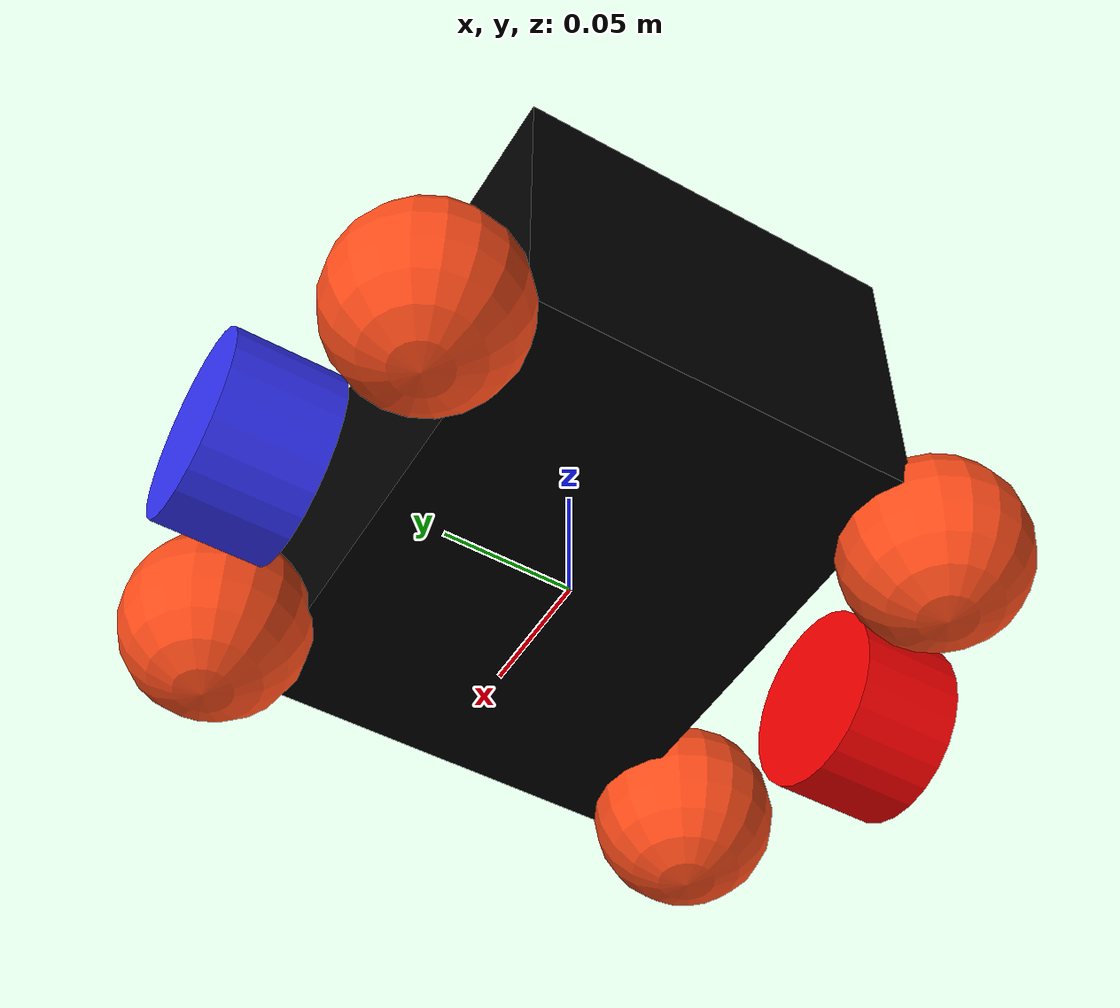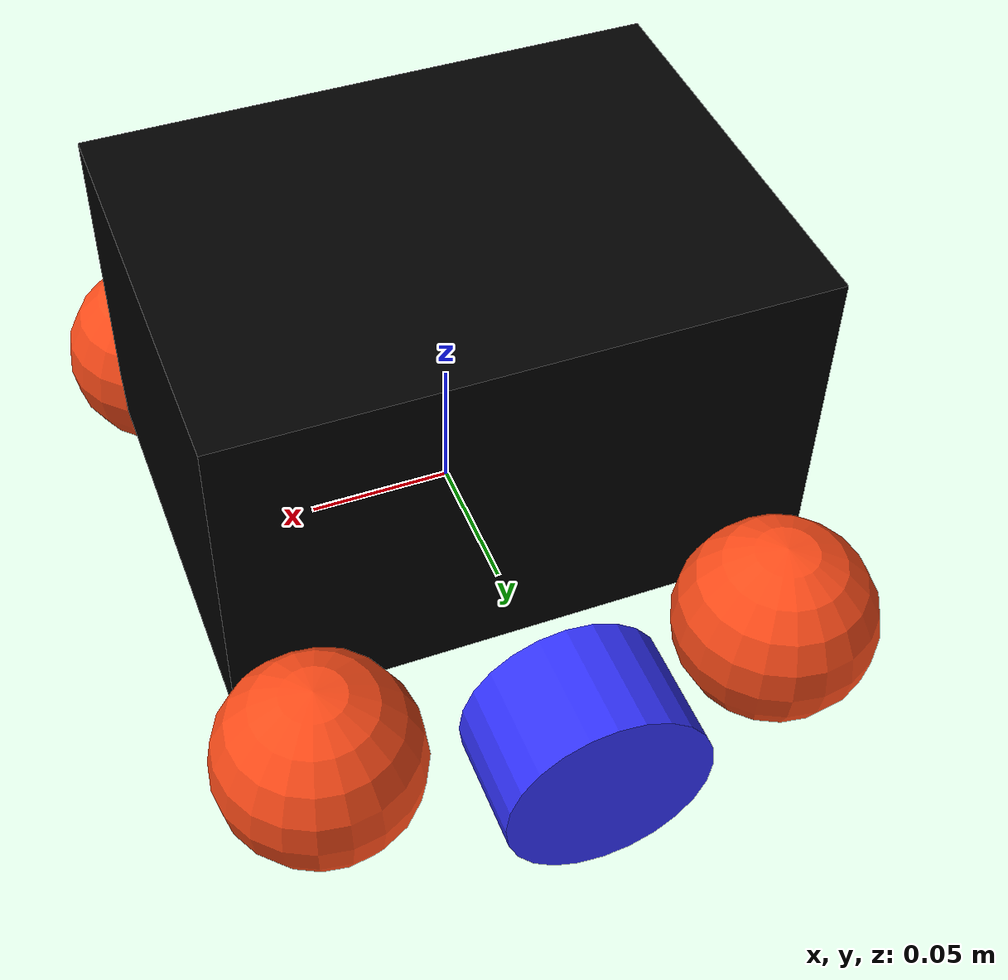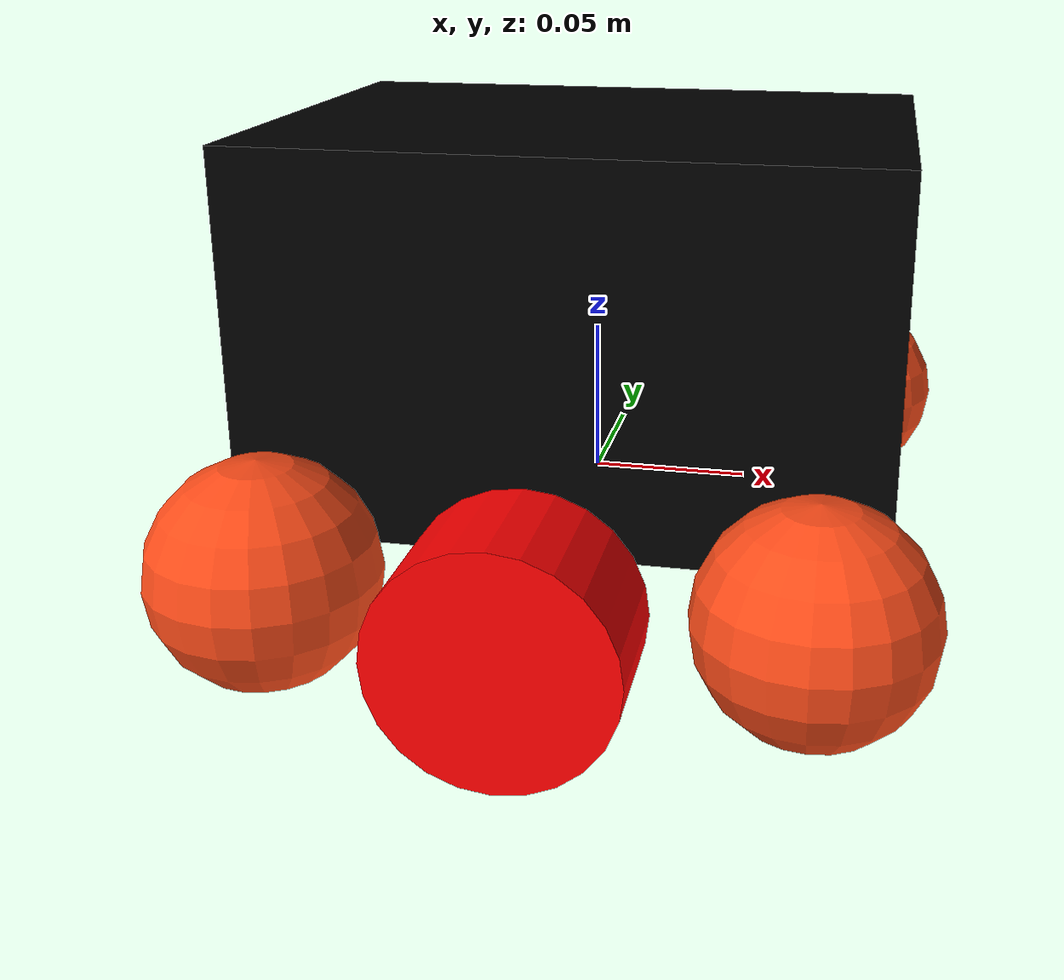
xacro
<?xml version="1.0"?>
<robot xmlns:xacro="http://www.ros.org/wiki/xacro" >

    <xacro:include filename="inertial_macros.xacro"/>

    <material name="white">
        <color rgba="1 1 1 1"/>
    </material>

    <material name="orange">
        <color rgba="1 0.3 0.1 1"/>
    </material>

    <material name="blue">
        <color rgba="0.2 0.2 1 1"/>
    </material>

    <material name="black">
        <color rgba="0 0 0 1"/>
    </material>

    <material name="red">
        <color rgba="1 0 0 1"/>
    </material>

    <!-- BASE LINK -->

    <link name="base_link">

    </link>

    <!-- CHASSIS LINK -->

    <joint name="chassis_joint" type="fixed">
        <parent link="base_link"/>
        <child link="chassis"/>
        <origin xyz="-0.1 0 0"/>
    </joint>

    <link name="chassis">
        <visual>
            <origin xyz="0.1 0 0.06"/>
            <geometry>
                <box size="0.2 0.15 0.12"/>
            </geometry>
            <material name="black"/>
        </visual>
        <collision>
            <origin xyz="0.1 0 0.06"/>
            <geometry>
                <box size="0.2 0.15 0.12"/>
            </geometry>
        </collision>
        <xacro:inertial_box mass="0.5" x="0.2" y="0.15" z="0.12">
            <origin xyz="0.1 0 0.06" rpy="0 0 0"/>
        </xacro:inertial_box>
    </link>

    <gazebo reference="chassis">
        <material>Gazebo/Black</material>
    </gazebo>

    <!-- LEFT WHEEL LINK -->

    <joint name="left_wheel_joint" type="continuous">
        <parent link="base_link"/>
        <child link="left_wheel"/>
        <origin xyz="0 0.125 0" rpy="-${pi/2} 0 0"/>
        <axis xyz="0 0 1"/>
    </joint>

     <link name="left_wheel">
        <visual>
            <geometry>
                <cylinder radius="0.035" length="0.04"/>
            </geometry>
            <material name="blue"/>
        </visual>
        <collision>
            <geometry>
                <cylinder radius="0.035" length="0.04"/>
            </geometry>
        </collision>
        <xacro:inertial_cylinder mass="0.1" length="0.04" radius="0.035">
            <origin xyz="0 0 0" rpy="0 0 0"/>
        </xacro:inertial_cylinder>
    </link>

    <gazebo reference="left_wheel">
        <material>Gazebo/Red</material>
    </gazebo>

    <!-- RIGHT WHEEL LINK -->

    <joint name="right_wheel_joint" type="continuous">
        <parent link="base_link"/>
        <child link="right_wheel"/>
        <origin xyz="0 -0.125 0" rpy="${pi/2} 0 0"/>
        <axis xyz="0 0 -1"/>
    </joint>

     <link name="right_wheel">
        <visual>
            <geometry>
                <cylinder radius="0.035" length="0.04"/>
            </geometry>
            <material name="red"/>
        </visual>
        <collision>
            <geometry>
                <cylinder radius="0.035" length="0.04"/>
            </geometry>
        </collision>
        <xacro:inertial_cylinder mass="0.1" length="0.04" radius="0.035">
            <origin xyz="0 0 0" rpy="0 0 0"/>
        </xacro:inertial_cylinder>
    </link>

    <gazebo reference="right_wheel">
        <material>Gazebo/Red</material>
    </gazebo>

    <!-- BACK RIGHT CASTER WHEEL (TANK TREAD WHEELS) LINK -->

    <joint name="back_right_caster_wheel_joint" type="fixed">
        <parent link="chassis"/>
        <child link="br_caster_wheel"/>
        <origin xyz="0.02 -0.1 0"/>
    </joint>

    <link name="br_caster_wheel">
        <visual>
            <geometry>
                <sphere radius="0.035"/>
            </geometry>
            <material name="orange"/>
        </visual>
        <collision>
            <geometry>
                <sphere radius="0.035"/>
            </geometry>
        </collision>
        <xacro:inertial_sphere mass="0.1" radius="0.035">
            <origin xyz="0 0 0" rpy="0 0 0"/>
        </xacro:inertial_sphere>
    </link>

    <gazebo reference="br_caster_wheel">
        <material>Gazebo/Orange</material>
        <mu1 value="0.0001"/>
        <mu2 value="0.0001"/>
    </gazebo>

    <!-- BACK LEFT CASTER WHEEL (TANK TREAD WHEELS) LINK -->

    <joint name="back_left_caster_wheel_joint" type="fixed">
        <parent link="chassis"/>
        <child link="bl_caster_wheel"/>
        <origin xyz="0.02 0.1 0"/>
    </joint>

    <link name="bl_caster_wheel">
        <visual>
            <geometry>
                <sphere radius="0.035"/>
            </geometry>
           <material name="orange"/>
        </visual>
        <collision>
            <geometry>
                <sphere radius="0.035"/>
            </geometry>
        </collision>
        <xacro:inertial_sphere mass="0.1" radius="0.035">
            <origin xyz="0 0 0" rpy="0 0 0"/>
        </xacro:inertial_sphere>
    </link>

    <gazebo reference="bl_caster_wheel">
        <material>Gazebo/Orange</material>
        <mu1 value="0.0001"/>
        <mu2 value="0.0001"/>
    </gazebo>

    <!-- FRONT RIGHT CASTER WHEEL (TANK TREAD WHEELS) LINK -->

    <joint name="front_right_caster_wheel_joint" type="fixed">
        <parent link="chassis"/>
        <child link="fr_caster_wheel"/>
        <origin xyz="0.18 -0.1 0"/>
    </joint>

    <link name="fr_caster_wheel">
        <visual>
            <geometry>
                <sphere radius="0.035"/>
            </geometry>
            <material name="orange"/>
        </visual>
        <collision>
            <geometry>
                <sphere radius="0.035"/>
            </geometry>
        </collision>
        <xacro:inertial_sphere mass="0.1" radius="0.035">
            <origin xyz="0 0 0" rpy="0 0 0"/>
        </xacro:inertial_sphere>
    </link>

    <gazebo reference="fr_caster_wheel">
        <material>Gazebo/Orange</material>
        <mu1 value="0.0001"/>
        <mu2 value="0.0001"/>
    </gazebo>

    <!-- FRONT LEFT CASTER WHEEL (TANK TREAD WHEELS) LINK -->

    <joint name="front_left_caster_wheel_joint" type="fixed">
        <parent link="chassis"/>
        <child link="fl_caster_wheel"/>
        <origin xyz="0.18 0.1 0"/>
    </joint>

    <link name="fl_caster_wheel">
        <visual>
            <geometry>
                <sphere radius="0.035"/>
            </geometry>
            <material name="orange"/>
        </visual>
        <collision>
            <geometry>
                <sphere radius="0.035"/>
            </geometry>
        </collision>
        <xacro:inertial_sphere mass="0.1" radius="0.035">
            <origin xyz="0 0 0" rpy="0 0 0"/>
        </xacro:inertial_sphere>
    </link>

    <gazebo reference="fl_caster_wheel">
        <material>Gazebo/Orange</material>
        <mu1 value="0.0001"/>
        <mu2 value="0.0001"/>
    </gazebo>

</robot>
